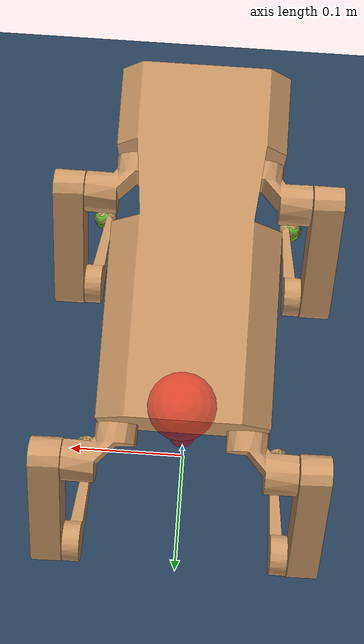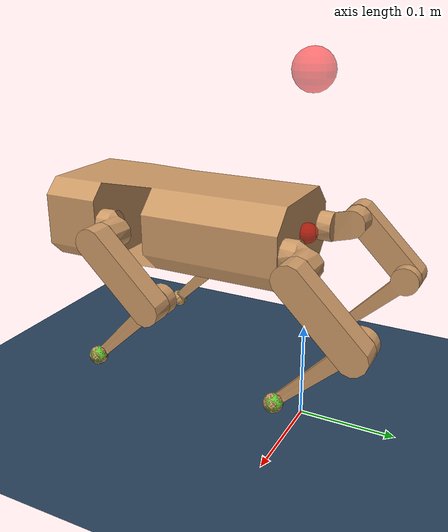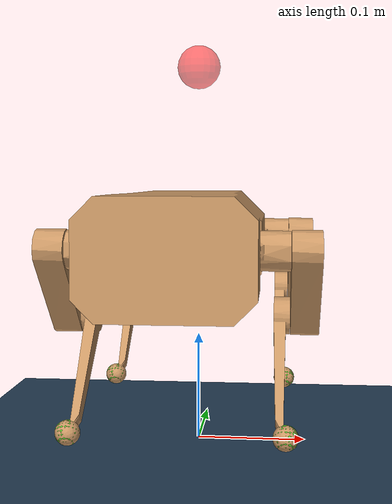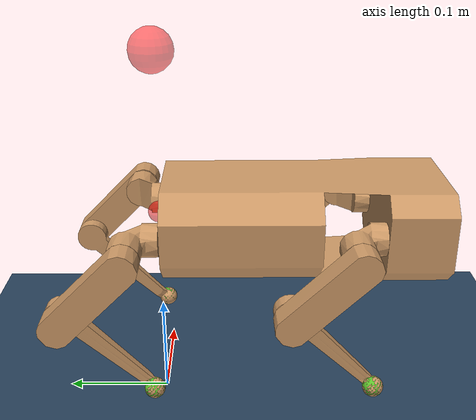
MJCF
<mujoco model="pupper scene">
  <!-- 包含機器人模型 -->
  <include file="pupper.xml"/>

  <statistic center="0 0 0.1" extent="0.8"/>

  <visual>
    <headlight diffuse="0.6 0.6 0.6" ambient="0.3 0.3 0.3" specular="0 0 0"/>
    <rgba haze="0.15 0.25 0.35 1"/>
    <global azimuth="120" elevation="-20"/>
  </visual>

  <asset>
    <texture type="skybox" builtin="gradient" rgb1="0.3 0.5 0.7" rgb2="0 0 0" width="512" height="3072"/>
    <texture type="2d" name="groundplane" builtin="checker" mark="edge" rgb1="0.2 0.3 0.4" rgb2="0.1 0.2 0.3"
      markrgb="0.8 0.8 0.8" width="300" height="300"/>
    <material name="groundplane" texture="groundplane" texuniform="true" texrepeat="5 5" reflectance="0.2"/>
  </asset>

  <worldbody>
    <light pos="0 0 1.5" dir="0 0 -1" directional="true"/>
    <camera name="default" pos="0.846 -1.465 0.916" xyaxes="0.866 0.500 0.000 -0.171 0.296 0.940"/>
    <geom name="floor" size="0 0 0.05" type="plane" material="groundplane"/>

  <keyframe>
    <!-- 為Pupper定義一個'home'站立姿態 -->
    <!-- qpos: [root_pos(3), root_quat(4), FR(3), FL(3), RR(3), RL(3)] -->
    <!-- 原始Pupper模型的home: [0 0.4 -0.8] for each leg (abduction, hip, knee) -->
    <key name="home" qpos="
    0 0 0.2
    1 0 0 0
    0 0.0 0.0
    0 0.0 0.0
    0 0.0 0.0
    0 0.0 0.0"
      ctrl="0 0 0  0 0 0  0 0 0  0 0 0"/>
  </keyframe>

    <!-- === 新增部分 1：Mocap Body (我們的空中錨點) === -->
    <!-- mocap="true" 表示它的位置由我們手動設定 -->
    <!-- 將其放在 worldbody 的頂層 -->
    <body name="anchor" pos="0 0 0.35" mocap="true">
      <!-- 我們可以給它一個看不見的 geom 來視覺化它的位置，方便除錯 -->
      <geom type="sphere" size="0.02" rgba="1 0 0 0.5" contype="0" conaffinity="0"/>
    </body>

  </worldbody>

  <!-- === 新增部分 2：Weld 約束 === -->
  <!-- 將其放在 mujoco 標籤的頂層 -->
  <!-- 這個約束將 pupper.xml 中的 "torso" "焊接" 到我們上面定義的 "anchor" 上 -->
  <!-- active="false" 表示預設是禁用的 -->
  <equality>
    <weld name="torso_anchor_weld" body1="torso" body2="anchor" solimp="0.9 0.95 0.001" solref="0.02 1" active="false"/>
  </equality>

</mujoco>

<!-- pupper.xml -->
<!--
  Pupper Model - Final Corrected Version
-->
<mujoco model="pupper_env">
    <compiler angle="radian" autolimits="true"/>

    <option timestep="0.001" gravity="0 0 -9.81"
            iterations="5" ls_iterations="10" noslip_iterations="2">
        <flag eulerdamp="disable"/>
    </option>

    <default>
        <default class="pupper">
            <joint armature="0.01" damping="0.5239" solimplimit="0.9 0.99 0.001" solreflimit="0.02 1"/>
            <geom type="mesh" contype="0" conaffinity="0" rgba="0.8 0.6 .4 1"/>
            <general biastype="affine" gainprm="35.0 0 0" biasprm="0 -35.0 0"/>
            <default class="pupper/collision/foot">
                <geom type="sphere"
                      contype="1" conaffinity="1"
                      group="3"
                      friction="1.0 0.2 0.1"
                      solimp="0.9 0.99 0.001"
                      solref="0.02 1"
                      rgba="1 0 0 1"/>
            </default>
        </default>
    </default>

    <asset>
        <mesh name="body" file="mesh/body.stl" scale="0.001 0.001 0.001"/>
        <mesh name="Hip_L" file="mesh/Hip_L.stl" scale="0.001 0.001 0.001"/>
        <mesh name="Hip_R" file="mesh/Hip_R.stl" scale="0.001 0.001 0.001"/>
        <mesh name="Upper_Leg_L" file="mesh/Upper_Leg_L.stl" scale="0.001 0.001 0.001"/>
        <mesh name="Upper_Leg_R" file="mesh/Upper_Leg_R.stl" scale="0.001 0.001 0.001"/>
        <mesh name="Lower_Leg_L" file="mesh/Lower_Leg_L.stl" scale="0.001 0.001 0.001"/>
        <mesh name="Lower_Leg_R" file="mesh/Lower_Leg_R.stl" scale="0.001 0.001 0.001"/>
    </asset>

    <worldbody>
        <body name="torso" pos="0 0 0.2" childclass="pupper">
            <freejoint name="root"/>
            <camera name="track" pos="1.958 -2.348 0.591" xyaxes="0.768 0.641 0.000 -0.101 0.122 0.987" mode="trackcom"/>
            <inertial pos="0.00109 -0.074 0" mass="0.7833" diaginertia="0.0003688 0.002508 0.002674"/>
            <geom name="torso_geom" mesh="body"/>
            <site name="imu_frame" pos="0 0 0" size="0.01" type="sphere" rgba="1 0 0 0.5"/>

            <!-- ==================== Front-Right Leg ==================== -->
            <body name="leg_front_right" pos="-0.046891 -0.203946 -0.0064">
                <inertial pos="0 0 0" mass="0.1081" diaginertia="3.698e-05 7.127e-06 4.075e-05"/>
                <joint name="abduction_front_right" type="hinge" axis="0 1 0" pos="0 0 0" range="-1.0472 1.0472"/>
                <geom name="fr_block_geom" mesh="Hip_R"/>
                <body name="upper_leg_front_right" pos="-0.037 0.028 0" axisangle="1 0 0 0.7854">
                    <inertial pos="0 0 0" mass="0.1321" diaginertia="0.0002253 6.493e-05 0.0002502"/>
                    <joint name="hip_front_right" type="hinge" axis="1 0 0" pos="0 0 0" range="-0.76166 3.81442"/>
                    <geom name="fr_geom" mesh="Upper_Leg_R"/>
                    <body name="lower_leg_front_right" pos="0 0 -0.08" axisangle="1 0 0 -1.57">
                        <inertial pos="0 0 0" mass="0.1036" diaginertia="0.0002253 6.493e-05 0.0002502"/>
                        <joint name="knee_front_right" type="hinge" axis="1 0 0" pos="0 0 0" range="-0.78540 1.65806"/>
                        <geom name="fr_l2_geom" mesh="Lower_Leg_R"/>

                        <!-- FINAL FIX: 將 site 的名字改回 "foot_front_right"，以匹配 Python 環境的需求。-->
                        <site name="foot_front_right" pos="0.003475 0 -0.11" size="0.009525" type="sphere" rgba="0 1 0 0.5"/>
                        <geom name="foot_front_right_collision" class="pupper/collision/foot"
                              pos="0.003475 0 -0.11" size="0.009525"/>
                    </body>
                </body>
            </body>

            <!-- ==================== Front-Left Leg ==================== -->
            <body name="leg_front_left" pos="0.047109 -0.203946 -0.0064">
                <inertial pos="0 0 0" mass="0.1081" diaginertia="3.698e-05 7.127e-06 4.075e-05"/>
                <joint name="abduction_front_left" type="hinge" axis="0 1 0" pos="0 0 0" range="-1.0472 1.0472"/>
                <geom name="fl_block_geom" mesh="Hip_L"/>
                <body name="upper_leg_front_left" pos="0.037 0.028 0" axisangle="1 0 0 0.7854">
                    <inertial pos="0 0 0" mass="0.1321" diaginertia="0.0002253 6.493e-05 0.0002502"/>
                    <joint name="hip_front_left" type="hinge" axis="1 0 0" pos="0 0 0" range="-0.76166 3.81442"/>
                    <geom name="fl_geom" mesh="Upper_Leg_L"/>
                    <body name="lower_leg_front_left" pos="0 0 -0.08" axisangle="1 0 0 -1.57">
                        <inertial pos="0 0 0" mass="0.1036" diaginertia="0.0002253 6.493e-05 0.0002502"/>
                        <joint name="knee_front_left" type="hinge" axis="1 0 0" pos="0 0 0" range="-0.78540 1.65806"/>
                        <geom name="fl_l2_geom" mesh="Lower_Leg_L"/>
                        <site name="foot_front_left" pos="-0.003475 0 -0.11" size="0.009525" type="sphere" rgba="0 1 0 0.5"/>
                        <geom name="foot_front_left_collision" class="pupper/collision/foot"
                              pos="-0.003475 0 -0.11" size="0.009525"/>
                    </body>
                </body>
            </body>

            <!-- ==================== Hind-Right Leg ==================== -->
            <body name="leg_hind_right" pos="-0.046896 -0.004096 -0.0064">
                <inertial pos="0 0 0" mass="0.1081" diaginertia="3.698e-05 7.127e-06 4.075e-05"/>
                <joint name="abduction_hind_right" type="hinge" axis="0 1 0" pos="0 0 0" range="-1.0472 1.0472"/>
                <geom name="br_block_geom" mesh="Hip_R"/>
                <body name="upper_leg_hind_right" pos="-0.037 0.028 0" axisangle="1 0 0 0.7854">
                    <inertial pos="0 0 0" mass="0.1321" diaginertia="0.0002253 6.493e-05 0.0002502"/>
                    <joint name="hip_hind_right" type="hinge" axis="1 0 0" pos="0 0 0" range="-0.76166 3.81442"/>
                    <geom name="br_geom" mesh="Upper_Leg_R"/>
                    <body name="lower_leg_hind_right" pos="0 0 -0.08" axisangle="1 0 0 -1.57">
                        <inertial pos="0 0 0" mass="0.1036" diaginertia="0.0002253 6.493e-05 0.0002502"/>
                        <joint name="knee_hind_right" type="hinge" axis="1 0 0" pos="0 0 0" range="-0.78540 1.65806"/>
                        <geom name="br_l2_geom" mesh="Lower_Leg_R"/>
                        <site name="foot_hind_right" pos="0.003475 0 -0.11" size="0.009525" type="sphere" rgba="0 1 0 0.5"/>
                        <geom name="foot_hind_right_collision" class="pupper/collision/foot"
                              pos="0.003475 0 -0.11" size="0.009525"/>
                    </body>
                </body>
            </body>

            <!-- ==================== Hind-Left Leg ==================== -->
            <body name="leg_hind_left" pos="0.047104 -0.004096 -0.0064">
                <inertial pos="0 0 0" mass="0.1081" diaginertia="3.698e-05 7.127e-06 4.075e-05"/>
                <joint name="abduction_hind_left" type="hinge" axis="0 1 0" pos="0 0 0" range="-1.0472 1.0472"/>
                <geom name="bl_block_geom" mesh="Hip_L"/>
                <body name="upper_leg_hind_left" pos="0.037 0.028 0" axisangle="1 0 0 0.7854">
                    <inertial pos="0 0 0" mass="0.1321" diaginertia="0.0002253 6.493e-05 0.0002502"/>
                    <joint name="hip_hind_left" type="hinge" axis="1 0 0" pos="0 0 0" range="-0.76166 3.81442"/>
                    <geom name="bl_geom" mesh="Upper_Leg_L"/>
                    <body name="lower_leg_hind_left" pos="0 0 -0.08" axisangle="1 0 0 -1.57">
                        <inertial pos="0 0 0" mass="0.1036" diaginertia="0.0002253 6.493e-05 0.0002502"/>
                        <joint name="knee_hind_left" type="hinge" axis="1 0 0" pos="0 0 0" range="-0.78540 1.65806"/>
                        <geom name="bl_l2_geom" mesh="Lower_Leg_L"/>
                        <site name="foot_hind_left" pos="-0.003475 0 -0.11" size="0.009525" type="sphere" rgba="0 1 0 0.5"/>
                        <geom name="foot_hind_left_collision" class="pupper/collision/foot"
                              pos="-0.003475 0 -0.11" size="0.009525"/>
                    </body>
                </body>
            </body>
        </body>
    </worldbody>

    <actuator>
        <general class="pupper" joint="abduction_front_right"/>
        <general class="pupper" joint="hip_front_right"/>
        <general class="pupper" joint="knee_front_right"/>
        <general class="pupper" joint="abduction_front_left"/>
        <general class="pupper" joint="hip_front_left"/>
        <general class="pupper" joint="knee_front_left"/>
        <general class="pupper" joint="abduction_hind_right"/>
        <general class="pupper" joint="hip_hind_right"/>
        <general class="pupper" joint="knee_hind_right"/>
        <general class="pupper" joint="abduction_hind_left"/>
        <general class="pupper" joint="hip_hind_left"/>
        <general class="pupper" joint="knee_hind_left"/>
    </actuator>

    <sensor>
        <!-- Sensor section remains unchanged -->
    </sensor>

    <keyframe>
        <key name="home"
            qpos="0 0 0.2 1 0 0 0 0 0 0 0 0 0 0 0 0 0 0 0"
            ctrl="0 0 0 0 0 0 0 0 0 0 0 0" />
    </keyframe>
</mujoco>
